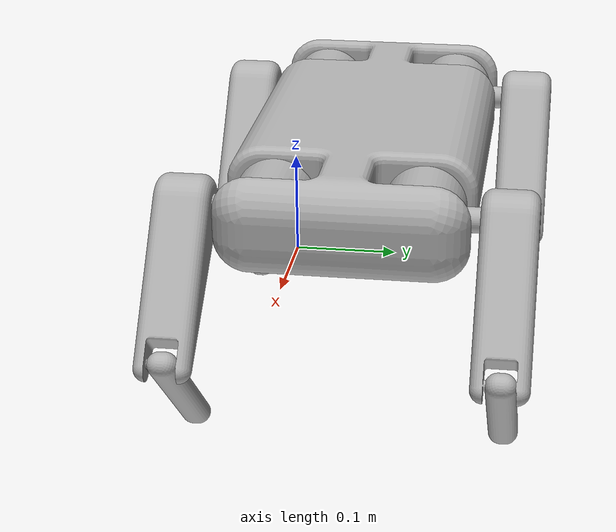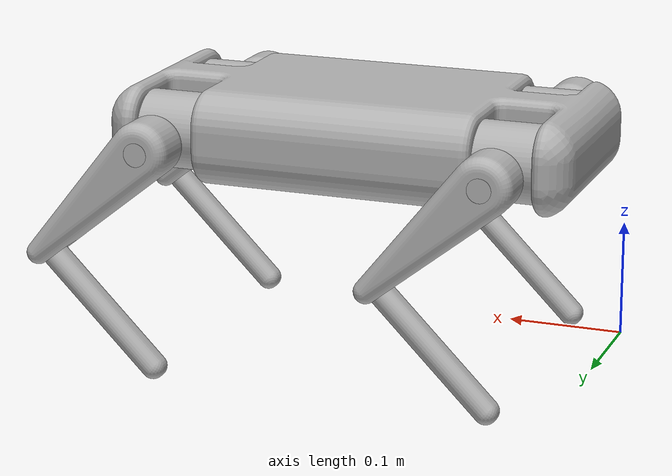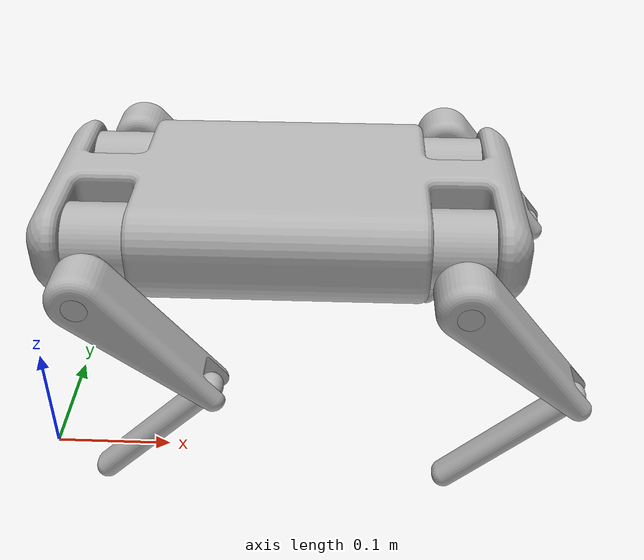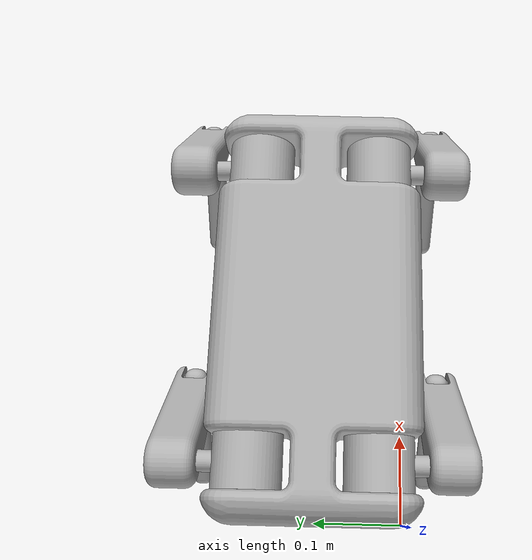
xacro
<?xml version="1.0" ?>
<robot name="coque" xmlns:xacro="http://www.ros.org/wiki/xacro">

<xacro:include filename="$(find coque_description)/urdf/materials.xacro" />
<xacro:include filename="$(find coque_description)/urdf/coque.trans" />
<xacro:include filename="$(find coque_description)/urdf/coque.gazebo" />
<link name="base_link">
  <inertial>
    <origin xyz="0.19999999984220831 0.09999999998866706 0.1900000000001411" rpy="0 0 0"/>
    <mass value="36.77568971897826"/>
    <inertia ixx="0.121044" iyy="0.397759" izz="0.483156" ixy="-0.0" iyz="-0.0" ixz="-0.0"/>
  </inertial>
  <visual>
    <origin xyz="0 0 0" rpy="0 0 0"/>
    <geometry>
      <mesh filename="package://coque_description/meshes/base_link.stl" scale="0.001 0.001 0.001"/>
    </geometry>
    <material name="silver"/>
  </visual>
  <collision>
    <origin xyz="0 0 0" rpy="0 0 0"/>
    <geometry>
      <mesh filename="package://coque_description/meshes/base_link.stl" scale="0.001 0.001 0.001"/>
    </geometry>
  </collision>
</link>

<link name="Componente14_1">
  <inertial>
    <origin xyz="-0.0487095880107167 0.012002184670218241 -0.04870883556070173" rpy="0 0 0"/>
    <mass value="0.4512300751073575"/>
    <inertia ixx="0.000427" iyy="0.000821" izz="0.000427" ixy="-0.0" iyz="-0.0" ixz="-0.000399"/>
  </inertial>
  <visual>
    <origin xyz="-0.147209 0.04002 -0.097791" rpy="0 0 0"/>
    <geometry>
      <mesh filename="package://coque_description/meshes/Componente14_1.stl" scale="0.001 0.001 0.001"/>
    </geometry>
    <material name="silver"/>
  </visual>
  <collision>
    <origin xyz="-0.147209 0.04002 -0.097791" rpy="0 0 0"/>
    <geometry>
      <mesh filename="package://coque_description/meshes/Componente14_1.stl" scale="0.001 0.001 0.001"/>
    </geometry>
  </collision>
</link>

<link name="Componente13_1">
  <inertial>
    <origin xyz="0.032472902263712265 0.02250126091999174 -0.032472874697501514" rpy="0 0 0"/>
    <mass value="1.730683223922294"/>
    <inertia ixx="0.001825" iyy="0.003101" izz="0.001825" ixy="-0.0" iyz="0.0" ixz="0.001328"/>
  </inertial>
  <visual>
    <origin xyz="-0.055 0.05 -0.19" rpy="0 0 0"/>
    <geometry>
      <mesh filename="package://coque_description/meshes/Componente13_1.stl" scale="0.001 0.001 0.001"/>
    </geometry>
    <material name="silver"/>
  </visual>
  <collision>
    <origin xyz="-0.055 0.05 -0.19" rpy="0 0 0"/>
    <geometry>
      <mesh filename="package://coque_description/meshes/Componente13_1.stl" scale="0.001 0.001 0.001"/>
    </geometry>
  </collision>
</link>

<link name="Componente15_1">
  <inertial>
    <origin xyz="-0.024999999941118504 -0.006031299506245279 2.8372990068525894e-10" rpy="0 0 0"/>
    <mass value="1.4452024438553985"/>
    <inertia ixx="0.001211" iyy="0.000622" izz="0.001138" ixy="0.0" iyz="0.0" ixz="0.0"/>
  </inertial>
  <visual>
    <origin xyz="-0.08 -0.04 -0.19" rpy="0 0 0"/>
    <geometry>
      <mesh filename="package://coque_description/meshes/Componente15_1.stl" scale="0.001 0.001 0.001"/>
    </geometry>
    <material name="silver"/>
  </visual>
  <collision>
    <origin xyz="-0.08 -0.04 -0.19" rpy="0 0 0"/>
    <geometry>
      <mesh filename="package://coque_description/meshes/Componente15_1.stl" scale="0.001 0.001 0.001"/>
    </geometry>
  </collision>
</link>

<link name="Componente5_1">
  <inertial>
    <origin xyz="-0.04870958801071666 -0.012002184670218019 -0.04870883556070176" rpy="0 0 0"/>
    <mass value="0.4512300751073571"/>
    <inertia ixx="0.000427" iyy="0.000821" izz="0.000427" ixy="0.0" iyz="0.0" ixz="-0.000399"/>
  </inertial>
  <visual>
    <origin xyz="-0.147209 -0.24002 -0.097791" rpy="0 0 0"/>
    <geometry>
      <mesh filename="package://coque_description/meshes/Componente5_1.stl" scale="0.001 0.001 0.001"/>
    </geometry>
    <material name="silver"/>
  </visual>
  <collision>
    <origin xyz="-0.147209 -0.24002 -0.097791" rpy="0 0 0"/>
    <geometry>
      <mesh filename="package://coque_description/meshes/Componente5_1.stl" scale="0.001 0.001 0.001"/>
    </geometry>
  </collision>
</link>

<link name="Componente4_1">
  <inertial>
    <origin xyz="0.03247284797238758 -0.022501267322789453 -0.03247281305519534" rpy="0 0 0"/>
    <mass value="1.7306814821728707"/>
    <inertia ixx="0.001825" iyy="0.003101" izz="0.001825" ixy="0.0" iyz="-0.0" ixz="0.001328"/>
  </inertial>
  <visual>
    <origin xyz="-0.055 -0.25 -0.19" rpy="0 0 0"/>
    <geometry>
      <mesh filename="package://coque_description/meshes/Componente4_1.stl" scale="0.001 0.001 0.001"/>
    </geometry>
    <material name="silver"/>
  </visual>
  <collision>
    <origin xyz="-0.055 -0.25 -0.19" rpy="0 0 0"/>
    <geometry>
      <mesh filename="package://coque_description/meshes/Componente4_1.stl" scale="0.001 0.001 0.001"/>
    </geometry>
  </collision>
</link>

<link name="Componente6_1">
  <inertial>
    <origin xyz="-0.024999999941118504 0.006031299506245286 2.8372990068525894e-10" rpy="0 0 0"/>
    <mass value="1.4452024438553985"/>
    <inertia ixx="0.001211" iyy="0.000622" izz="0.001138" ixy="-0.0" iyz="-0.0" ixz="0.0"/>
  </inertial>
  <visual>
    <origin xyz="-0.08 -0.16 -0.19" rpy="0 0 0"/>
    <geometry>
      <mesh filename="package://coque_description/meshes/Componente6_1.stl" scale="0.001 0.001 0.001"/>
    </geometry>
    <material name="silver"/>
  </visual>
  <collision>
    <origin xyz="-0.08 -0.16 -0.19" rpy="0 0 0"/>
    <geometry>
      <mesh filename="package://coque_description/meshes/Componente6_1.stl" scale="0.001 0.001 0.001"/>
    </geometry>
  </collision>
</link>

<link name="Componente9_1">
  <inertial>
    <origin xyz="0.032472847972341345 -0.022501665604991616 -0.03247281305519567" rpy="0 0 0"/>
    <mass value="1.7306814821728753"/>
    <inertia ixx="0.001825" iyy="0.003101" izz="0.001825" ixy="0.0" iyz="-0.0" ixz="0.001328"/>
  </inertial>
  <visual>
    <origin xyz="-0.345 -0.249357 -0.19" rpy="0 0 0"/>
    <geometry>
      <mesh filename="package://coque_description/meshes/Componente9_1.stl" scale="0.001 0.001 0.001"/>
    </geometry>
    <material name="silver"/>
  </visual>
  <collision>
    <origin xyz="-0.345 -0.249357 -0.19" rpy="0 0 0"/>
    <geometry>
      <mesh filename="package://coque_description/meshes/Componente9_1.stl" scale="0.001 0.001 0.001"/>
    </geometry>
  </collision>
</link>

<link name="Componente7_1">
  <inertial>
    <origin xyz="-0.02499999994111851 0.006030901224043428 2.837298729296833e-10" rpy="0 0 0"/>
    <mass value="1.4452024438553985"/>
    <inertia ixx="0.001211" iyy="0.000622" izz="0.001138" ixy="-0.0" iyz="-0.0" ixz="-0.0"/>
  </inertial>
  <visual>
    <origin xyz="-0.37 -0.159357 -0.19" rpy="0 0 0"/>
    <geometry>
      <mesh filename="package://coque_description/meshes/Componente7_1.stl" scale="0.001 0.001 0.001"/>
    </geometry>
    <material name="silver"/>
  </visual>
  <collision>
    <origin xyz="-0.37 -0.159357 -0.19" rpy="0 0 0"/>
    <geometry>
      <mesh filename="package://coque_description/meshes/Componente7_1.stl" scale="0.001 0.001 0.001"/>
    </geometry>
  </collision>
</link>

<link name="Componente11_1">
  <inertial>
    <origin xyz="-0.048709588010716454 0.01200258295242005 -0.04870883556070176" rpy="0 0 0"/>
    <mass value="0.4512300751073578"/>
    <inertia ixx="0.000427" iyy="0.000821" izz="0.000427" ixy="-0.0" iyz="-0.0" ixz="-0.000399"/>
  </inertial>
  <visual>
    <origin xyz="-0.437209 0.039377 -0.097791" rpy="0 0 0"/>
    <geometry>
      <mesh filename="package://coque_description/meshes/Componente11_1.stl" scale="0.001 0.001 0.001"/>
    </geometry>
    <material name="silver"/>
  </visual>
  <collision>
    <origin xyz="-0.437209 0.039377 -0.097791" rpy="0 0 0"/>
    <geometry>
      <mesh filename="package://coque_description/meshes/Componente11_1.stl" scale="0.001 0.001 0.001"/>
    </geometry>
  </collision>
</link>

<link name="Componente12_1">
  <inertial>
    <origin xyz="0.03247290226366578 0.022501659202193585 -0.03247287469750182" rpy="0 0 0"/>
    <mass value="1.7306832239222976"/>
    <inertia ixx="0.001825" iyy="0.003101" izz="0.001825" ixy="-0.0" iyz="0.0" ixz="0.001328"/>
  </inertial>
  <visual>
    <origin xyz="-0.345 0.049357 -0.19" rpy="0 0 0"/>
    <geometry>
      <mesh filename="package://coque_description/meshes/Componente12_1.stl" scale="0.001 0.001 0.001"/>
    </geometry>
    <material name="silver"/>
  </visual>
  <collision>
    <origin xyz="-0.345 0.049357 -0.19" rpy="0 0 0"/>
    <geometry>
      <mesh filename="package://coque_description/meshes/Componente12_1.stl" scale="0.001 0.001 0.001"/>
    </geometry>
  </collision>
</link>

<link name="Componente8_1">
  <inertial>
    <origin xyz="-0.04870958801071629 -0.012002582952419849 -0.04870883556070164" rpy="0 0 0"/>
    <mass value="0.45123007510735835"/>
    <inertia ixx="0.000427" iyy="0.000821" izz="0.000427" ixy="0.0" iyz="0.0" ixz="-0.000399"/>
  </inertial>
  <visual>
    <origin xyz="-0.437209 -0.239377 -0.097791" rpy="0 0 0"/>
    <geometry>
      <mesh filename="package://coque_description/meshes/Componente8_1.stl" scale="0.001 0.001 0.001"/>
    </geometry>
    <material name="silver"/>
  </visual>
  <collision>
    <origin xyz="-0.437209 -0.239377 -0.097791" rpy="0 0 0"/>
    <geometry>
      <mesh filename="package://coque_description/meshes/Componente8_1.stl" scale="0.001 0.001 0.001"/>
    </geometry>
  </collision>
</link>

<link name="Componente10_1">
  <inertial>
    <origin xyz="-0.02499999994111851 -0.00603090122404349 2.837298729296833e-10" rpy="0 0 0"/>
    <mass value="1.4452024438553985"/>
    <inertia ixx="0.001211" iyy="0.000622" izz="0.001138" ixy="0.0" iyz="0.0" ixz="0.0"/>
  </inertial>
  <visual>
    <origin xyz="-0.37 -0.040643 -0.19" rpy="0 0 0"/>
    <geometry>
      <mesh filename="package://coque_description/meshes/Componente10_1.stl" scale="0.001 0.001 0.001"/>
    </geometry>
    <material name="silver"/>
  </visual>
  <collision>
    <origin xyz="-0.37 -0.040643 -0.19" rpy="0 0 0"/>
    <geometry>
      <mesh filename="package://coque_description/meshes/Componente10_1.stl" scale="0.001 0.001 0.001"/>
    </geometry>
  </collision>
</link>

<joint name="Revolución1" type="continuous">
  <origin xyz="0.092209 0.00998 -0.092209" rpy="0 0 0"/>
  <parent link="Componente13_1"/>
  <child link="Componente14_1"/>
  <axis xyz="0.0 1.0 0.0"/>
</joint>

<joint name="Revolución2" type="continuous">
  <origin xyz="-0.025 -0.09 0.0" rpy="0 0 0"/>
  <parent link="Componente15_1"/>
  <child link="Componente13_1"/>
  <axis xyz="0.0 -1.0 0.0"/>
</joint>

<joint name="Revolución3" type="continuous">
  <origin xyz="0.08 0.04 0.19" rpy="0 0 0"/>
  <parent link="base_link"/>
  <child link="Componente15_1"/>
  <axis xyz="-1.0 0.0 0.0"/>
</joint>

<joint name="Revolución4" type="continuous">
  <origin xyz="0.092209 -0.00998 -0.092209" rpy="0 0 0"/>
  <parent link="Componente4_1"/>
  <child link="Componente5_1"/>
  <axis xyz="0.0 1.0 0.0"/>
</joint>

<joint name="Revolución5" type="continuous">
  <origin xyz="-0.025 0.09 0.0" rpy="0 0 0"/>
  <parent link="Componente6_1"/>
  <child link="Componente4_1"/>
  <axis xyz="0.0 1.0 0.0"/>
</joint>

<joint name="Revolución6" type="continuous">
  <origin xyz="0.08 0.16 0.19" rpy="0 0 0"/>
  <parent link="base_link"/>
  <child link="Componente6_1"/>
  <axis xyz="-1.0 0.0 0.0"/>
</joint>

<joint name="Revolución7" type="continuous">
  <origin xyz="-0.025 0.09 0.0" rpy="0 0 0"/>
  <parent link="Componente7_1"/>
  <child link="Componente9_1"/>
  <axis xyz="0.0 1.0 0.0"/>
</joint>

<joint name="Revolución8" type="continuous">
  <origin xyz="0.37 0.159357 0.19" rpy="0 0 0"/>
  <parent link="base_link"/>
  <child link="Componente7_1"/>
  <axis xyz="-1.0 0.0 0.0"/>
</joint>

<joint name="Revolución9" type="continuous">
  <origin xyz="0.092209 0.00998 -0.092209" rpy="0 0 0"/>
  <parent link="Componente12_1"/>
  <child link="Componente11_1"/>
  <axis xyz="0.0 1.0 0.0"/>
</joint>

<joint name="Revolución10" type="continuous">
  <origin xyz="-0.025 -0.09 0.0" rpy="0 0 0"/>
  <parent link="Componente10_1"/>
  <child link="Componente12_1"/>
  <axis xyz="0.0 -1.0 0.0"/>
</joint>

<joint name="Revolución11" type="continuous">
  <origin xyz="0.092209 -0.00998 -0.092209" rpy="0 0 0"/>
  <parent link="Componente9_1"/>
  <child link="Componente8_1"/>
  <axis xyz="0.0 1.0 0.0"/>
</joint>

<joint name="Revolución12" type="continuous">
  <origin xyz="0.37 0.040643 0.19" rpy="0 0 0"/>
  <parent link="base_link"/>
  <child link="Componente10_1"/>
  <axis xyz="-1.0 0.0 0.0"/>
</joint>

</robot>

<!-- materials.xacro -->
<robot name="coque" xmlns:xacro="http://www.ros.org/wiki/xacro" >

<material name="silver">
  <color rgba="0.700 0.700 0.700 1.000"/>
</material>

</robot>

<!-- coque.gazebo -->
<robot name="coque" xmlns:xacro="http://www.ros.org/wiki/xacro" >

<xacro:property name="body_color" value="Gazebo/Silver" />

<gazebo>
  <plugin name="control" filename="libgazebo_ros_control.so"/>
</gazebo>
<gazebo reference="base_link">
  <material>${body_color}</material>
  <mu1>0.2</mu1>
  <mu2>0.2</mu2>
  <selfCollide>true</selfCollide>
  <gravity>true</gravity>
</gazebo>

<gazebo reference="Componente14_1">
  <material>${body_color}</material>
  <mu1>0.2</mu1>
  <mu2>0.2</mu2>
  <selfCollide>true</selfCollide>
</gazebo>

<gazebo reference="Componente13_1">
  <material>${body_color}</material>
  <mu1>0.2</mu1>
  <mu2>0.2</mu2>
  <selfCollide>true</selfCollide>
</gazebo>

<gazebo reference="Componente15_1">
  <material>${body_color}</material>
  <mu1>0.2</mu1>
  <mu2>0.2</mu2>
  <selfCollide>true</selfCollide>
</gazebo>

<gazebo reference="Componente5_1">
  <material>${body_color}</material>
  <mu1>0.2</mu1>
  <mu2>0.2</mu2>
  <selfCollide>true</selfCollide>
</gazebo>

<gazebo reference="Componente4_1">
  <material>${body_color}</material>
  <mu1>0.2</mu1>
  <mu2>0.2</mu2>
  <selfCollide>true</selfCollide>
</gazebo>

<gazebo reference="Componente6_1">
  <material>${body_color}</material>
  <mu1>0.2</mu1>
  <mu2>0.2</mu2>
  <selfCollide>true</selfCollide>
</gazebo>

<gazebo reference="Componente9_1">
  <material>${body_color}</material>
  <mu1>0.2</mu1>
  <mu2>0.2</mu2>
  <selfCollide>true</selfCollide>
</gazebo>

<gazebo reference="Componente7_1">
  <material>${body_color}</material>
  <mu1>0.2</mu1>
  <mu2>0.2</mu2>
  <selfCollide>true</selfCollide>
</gazebo>

<gazebo reference="Componente11_1">
  <material>${body_color}</material>
  <mu1>0.2</mu1>
  <mu2>0.2</mu2>
  <selfCollide>true</selfCollide>
</gazebo>

<gazebo reference="Componente12_1">
  <material>${body_color}</material>
  <mu1>0.2</mu1>
  <mu2>0.2</mu2>
  <selfCollide>true</selfCollide>
</gazebo>

<gazebo reference="Componente8_1">
  <material>${body_color}</material>
  <mu1>0.2</mu1>
  <mu2>0.2</mu2>
  <selfCollide>true</selfCollide>
</gazebo>

<gazebo reference="Componente10_1">
  <material>${body_color}</material>
  <mu1>0.2</mu1>
  <mu2>0.2</mu2>
  <selfCollide>true</selfCollide>
</gazebo>

</robot>
